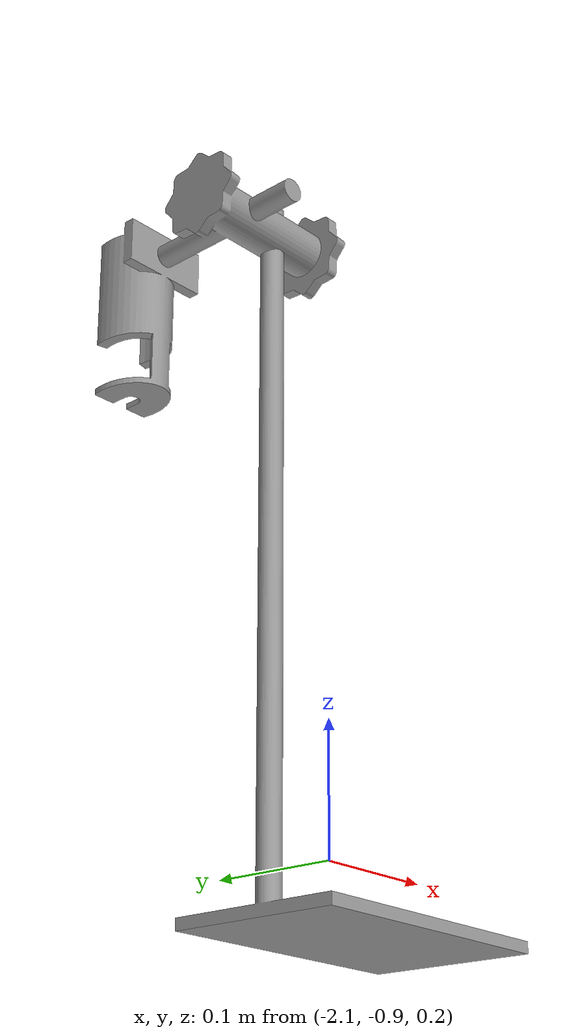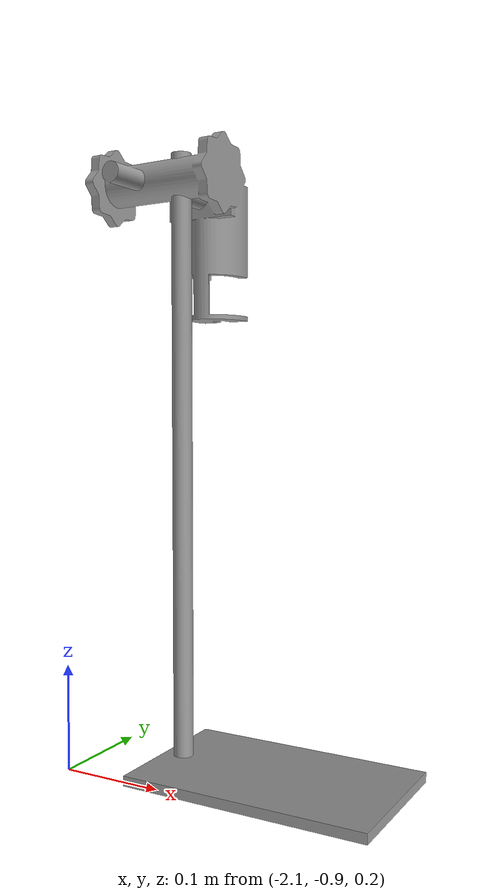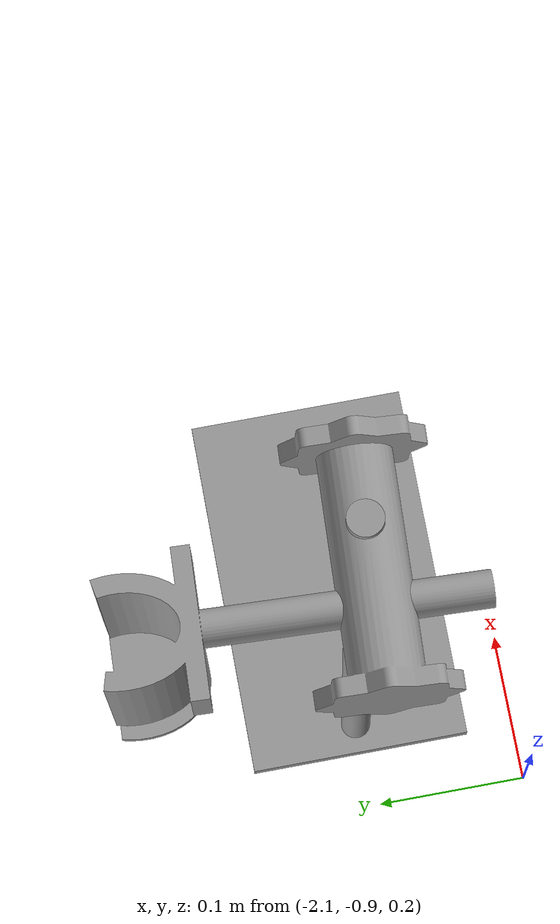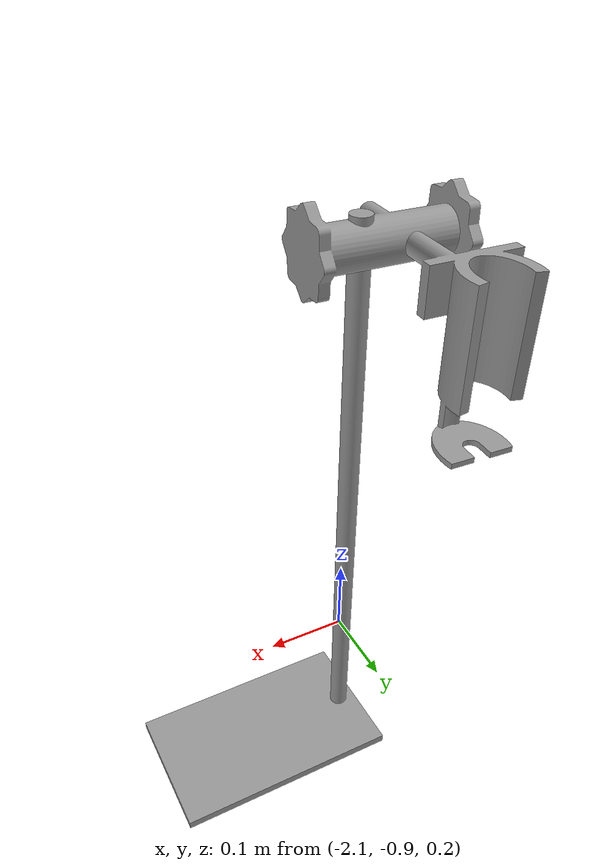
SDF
<?xml version='1.0'?>
<sdf version='1.7'>
  <model name='dispenser_holder'>
    <link name='link_1'>
      <inertial>
        <mass>1</mass>
        <inertia>
          <ixx>0.166667</ixx>
          <ixy>0</ixy>
          <ixz>0</ixz>
          <iyy>0.166667</iyy>
          <iyz>0</iyz>
          <izz>0.166667</izz>
        </inertia>
        <pose>0 0 0 0 -0 0</pose>
      </inertial>
      <pose>-2.05802 -0.75236 0.638104 0 3e-06 -1.61448</pose>
      <gravity>1</gravity>
      <self_collide>0</self_collide>
      <kinematic>0</kinematic>
      <enable_wind>0</enable_wind>
      <visual name='visual'>
        <pose>0 0 0 0 -0 0</pose>
        <geometry>
          <mesh>
            <uri>file://models/dispenser_holder/meshes/dispenser_holder.stl</uri>
            <scale>1 1 1</scale>
          </mesh>
        </geometry>
        <material>
          <lighting>1</lighting>
          <script>
            <uri>file://media/materials/scripts/gazebo.material</uri>
            <name>Gazebo/Grey</name>
          </script>
          <shader type='pixel'>
            <normal_map>__default__</normal_map>
          </shader>
          <emissive>0 0 0 1</emissive>
          <ambient>0.3 0.3 0.3 1</ambient>
          <diffuse>0.7 0.7 0.7 1</diffuse>
          <specular>0.01 0.01 0.01 1</specular>
        </material>
        <transparency>0</transparency>
        <cast_shadows>1</cast_shadows>
      </visual>
      <collision name='collision'>
        <laser_retro>0</laser_retro>
        <max_contacts>10</max_contacts>
        <pose>0 0 0 0 -0 0</pose>
        <geometry>
          <mesh>
            <uri>file://models/dispenser_holder/meshes/dispenser_holder.stl</uri>
            <scale>1 1 1</scale>
          </mesh>
        </geometry>
        <surface>
          <friction>
            <ode>
              <mu>1</mu>
              <mu2>1</mu2>
              <fdir1>0 0 0</fdir1>
              <slip1>0</slip1>
              <slip2>0</slip2>
            </ode>
            <torsional>
              <coefficient>1</coefficient>
              <patch_radius>0</patch_radius>
              <surface_radius>0</surface_radius>
              <use_patch_radius>1</use_patch_radius>
              <ode>
                <slip>0</slip>
              </ode>
            </torsional>
          </friction>
          <bounce>
            <restitution_coefficient>0</restitution_coefficient>
            <threshold>1e+06</threshold>
          </bounce>
          <contact>
            <collide_without_contact>0</collide_without_contact>
            <collide_without_contact_bitmask>1</collide_without_contact_bitmask>
            <collide_bitmask>1</collide_bitmask>
            <ode>
              <soft_cfm>0</soft_cfm>
              <soft_erp>0.2</soft_erp>
              <kp>1e+13</kp>
              <kd>1</kd>
              <max_vel>0.01</max_vel>
              <min_depth>0</min_depth>
            </ode>
            <bullet>
              <split_impulse>1</split_impulse>
              <split_impulse_penetration_threshold>-0.01</split_impulse_penetration_threshold>
              <soft_cfm>0</soft_cfm>
              <soft_erp>0.2</soft_erp>
              <kp>1e+13</kp>
              <kd>1</kd>
            </bullet>
          </contact>
        </surface>
      </collision>
    </link>
    <link name='link_2'>
      <inertial>
        <mass>1</mass>
        <inertia>
          <ixx>0.166667</ixx>
          <ixy>0</ixy>
          <ixz>0</ixz>
          <iyy>0.166667</iyy>
          <iyz>0</iyz>
          <izz>0.166667</izz>
        </inertia>
        <pose>0.12 0.08 0 0 -0 0</pose>
      </inertial>
      <pose>-2 -1 0.168643 0 -0 0</pose>
      <gravity>1</gravity>
      <self_collide>0</self_collide>
      <kinematic>1</kinematic>
      <enable_wind>0</enable_wind>
      <visual name='visual'>
        <pose>0 0 0 0 -0 0</pose>
        <geometry>
          <mesh>
            <uri>file://models/dispenser_holder/meshes/tripod.stl</uri>
            <scale>1 1 1</scale>
          </mesh>
        </geometry>
        <material>
          <lighting>1</lighting>
          <script>
            <uri>file://media/materials/scripts/gazebo.material</uri>
            <name>Gazebo/Grey</name>
          </script>
          <shader type='pixel'>
            <normal_map>__default__</normal_map>
          </shader>
          <emissive>0 0 0 1</emissive>
          <ambient>0.3 0.3 0.3 1</ambient>
          <diffuse>0.7 0.7 0.7 1</diffuse>
          <specular>0.01 0.01 0.01 1</specular>
        </material>
        <transparency>0</transparency>
        <cast_shadows>1</cast_shadows>
      </visual>
      <collision name='collision'>
        <laser_retro>0</laser_retro>
        <max_contacts>10</max_contacts>
        <pose>0 0 0 0 -0 0</pose>
        <geometry>
          <mesh>
            <uri>file://models/dispenser_holder/meshes/tripod.stl</uri>
            <scale>1 1 1</scale>
          </mesh>
        </geometry>
        <surface>
          <friction>
            <ode>
              <mu>1</mu>
              <mu2>1</mu2>
              <fdir1>0 0 0</fdir1>
              <slip1>0</slip1>
              <slip2>0</slip2>
            </ode>
            <torsional>
              <coefficient>1</coefficient>
              <patch_radius>0</patch_radius>
              <surface_radius>0</surface_radius>
              <use_patch_radius>1</use_patch_radius>
              <ode>
                <slip>0</slip>
              </ode>
            </torsional>
          </friction>
          <bounce>
            <restitution_coefficient>0</restitution_coefficient>
            <threshold>1e+06</threshold>
          </bounce>
          <contact>
            <collide_without_contact>0</collide_without_contact>
            <collide_without_contact_bitmask>1</collide_without_contact_bitmask>
            <collide_bitmask>1</collide_bitmask>
            <ode>
              <soft_cfm>0</soft_cfm>
              <soft_erp>0.2</soft_erp>
              <kp>1e+13</kp>
              <kd>1</kd>
              <max_vel>0.01</max_vel>
              <min_depth>0</min_depth>
            </ode>
            <bullet>
              <split_impulse>1</split_impulse>
              <split_impulse_penetration_threshold>-0.01</split_impulse_penetration_threshold>
              <soft_cfm>0</soft_cfm>
              <soft_erp>0.2</soft_erp>
              <kp>1e+13</kp>
              <kd>1</kd>
            </bullet>
          </contact>
        </surface>
      </collision>
    </link>
    <joint name='link_2_JOINT_0' type='prismatic'>
      <parent>link_2</parent>
      <child>link_1</child>
      <pose>0.04 0.02 0.13 0 -0 0</pose>
      <axis>
        <xyz>0 0 1</xyz>
        <limit>
          <lower>-0.5</lower>
          <upper>0</upper>
          <effort>-1</effort>
          <velocity>-1</velocity>
        </limit>
        <dynamics>
          <spring_reference>0</spring_reference>
          <spring_stiffness>0</spring_stiffness>
          <damping>0</damping>
          <friction>10</friction>
        </dynamics>
      </axis>
      <physics>
        <ode>
          <limit>
            <cfm>0</cfm>
            <erp>0.2</erp>
          </limit>
          <suspension>
            <cfm>0</cfm>
            <erp>0.2</erp>
          </suspension>
        </ode>
      </physics>
    </joint>
    <static>0</static>
    <allow_auto_disable>1</allow_auto_disable>
  </model>
</sdf>
